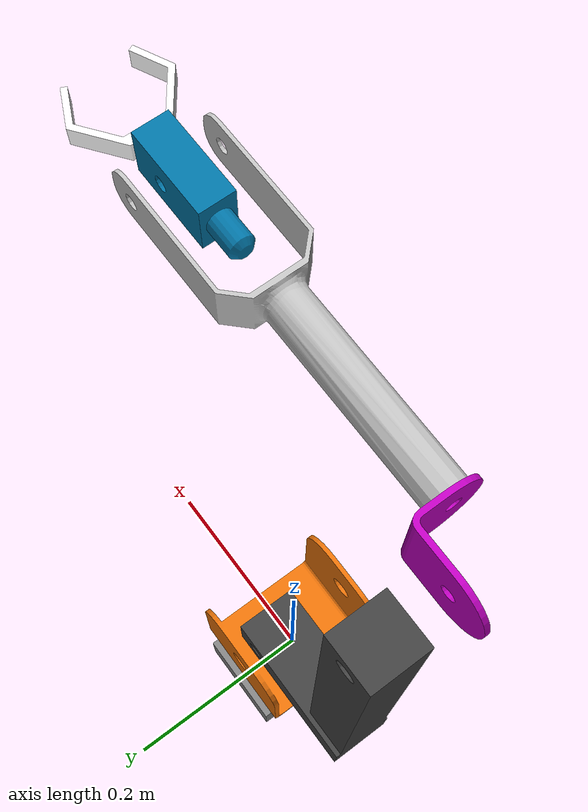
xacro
<?xml version="1.0"?>
<robot xmlns:xacro="http://www.ros.org/wiki/xacro" name="Arm_URDF_2026">
    <xacro:arg name="initial_positions_file" default="initial_positions.yaml" />

    <!-- Import Arm_URDF_2026 urdf file -->
    <xacro:include filename="$(find simulation)/urdfs/Arm_URDF_2026.urdf" />

    <!-- Import control_xacro -->
    <xacro:include filename="Arm_URDF_2026.ros2_control.xacro" />

    <xacro:Arm_URDF_2026_ros2_control name="FakeSystem" initial_positions_file="$(arg initial_positions_file)"/>

</robot>

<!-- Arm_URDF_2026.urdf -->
<robot
  name="Arm_URDF_2026">
  <link
    name="base_link">
    <inertial>
      <origin
        xyz="3.84653360219475E-19 1.62936819250162E-18 -0.0341328821653139"
        rpy="0 0 0" />
      <mass
        value="0.864892134563512" />
      <inertia
        ixx="0.00191876859811616"
        ixy="-3.39237895942118E-19"
        ixz="6.81787506541134E-20"
        iyy="0.00123037859811616"
        iyz="3.87426352662329E-20"
        izz="0.00194695919266471" />
    </inertial>
    <visual>
      <origin
        xyz="0 0 0"
        rpy="0 0 0" />
      <geometry>
        <mesh
          filename="package://simulation/meshes/Arm_URDF_2026/base_link.STL" />
      </geometry>
      <material
        name="">
        <color
          rgba="0.501960784313725 0.501960784313725 0.501960784313725 1" />
      </material>
    </visual>
    <collision>
      <origin
        xyz="0 0 0"
        rpy="0 0 0" />
      <geometry>
        <mesh
          filename="package://simulation/meshes/Arm_URDF_2026/base_link.STL" />
      </geometry>
    </collision>
  </link>
  <link
    name="shoulder_plate">
    <inertial>
      <origin
        xyz="5.08794742628151E-18 -1.92579702269949E-16 0.0600160238534802"
        rpy="0 0 0" />
      <mass
        value="0.218906800388021" />
      <inertia
        ixx="0.00111549148827076"
        ixy="-2.33595804984975E-18"
        ixz="2.49525184688718E-19"
        iyy="0.0006612096112071"
        iyz="-1.11709605937177E-18"
        izz="0.000976648220892923" />
    </inertial>
    <visual>
      <origin
        xyz="0 0 0"
        rpy="0 0 0" />
      <geometry>
        <mesh
          filename="package://simulation/meshes/Arm_URDF_2026/shoulder_plate.STL" />
      </geometry>
      <material
        name="">
        <color
          rgba="0.909803921568627 0.443137254901961 0.0313725490196078 1" />
      </material>
    </visual>
    <collision>
      <origin
        xyz="0 0 0"
        rpy="0 0 0" />
      <geometry>
        <mesh
          filename="package://simulation/meshes/Arm_URDF_2026/shoulder_plate.STL" />
      </geometry>
    </collision>
  </link>
  <joint
    name="shoulder"
    type="revolute">
    <origin
      xyz="0 0 0"
      rpy="0 0 0" />
    <parent
      link="base_link" />
    <child
      link="shoulder_plate" />
    <axis
      xyz="0 0 1" />
    <limit
      lower="-3.1416"
      upper="3.1416"
      effort="0"
      velocity="0" />
  </joint>
  <link
    name="shoulder_tube">
    <inertial>
      <origin
        xyz="0.0934397535393198 0.153473166564317 0.0789999999999963"
        rpy="0 0 0" />
      <mass
        value="1.53763602521836" />
      <inertia
        ixx="0.0311716120782097"
        ixy="-0.00392450317623869"
        ixz="-4.23782427029306E-19"
        iyy="0.0025675148100835"
        iyz="-3.11391018603271E-18"
        izz="0.0329256007856722" />
    </inertial>
    <visual>
      <origin
        xyz="0 0 0"
        rpy="0 0 0" />
      <geometry>
        <mesh
          filename="package://simulation/meshes/Arm_URDF_2026/shoulder_tube.STL" />
      </geometry>
      <material
        name="">
        <color
          rgba="0.250980392156863 0.250980392156863 0.250980392156863 1" />
      </material>
    </visual>
    <collision>
      <origin
        xyz="0 0 0"
        rpy="0 0 0" />
      <geometry>
        <mesh
          filename="package://simulation/meshes/Arm_URDF_2026/shoulder_tube.STL" />
      </geometry>
    </collision>
  </link>
  <joint
    name="shoulder_joint"
    type="revolute">
    <origin
      xyz="0 -0.0625 0.095"
      rpy="1.5708 0 3.1416" />
    <parent
      link="shoulder_plate" />
    <child
      link="shoulder_tube" />
    <axis
      xyz="0 0 -1" />
    <limit
      lower="-3.1416"
      upper="3.1416"
      effort="0"
      velocity="0" />
  </joint>
  <link
    name="elbow_plate">
    <inertial>
      <origin
        xyz="-0.0261022307368617 -1.11022302462516E-16 0.0514469264415673"
        rpy="0 0 0" />
      <mass
        value="0.0520779843414588" />
      <inertia
        ixx="4.41777709651995E-05"
        ixy="2.8882044236066E-21"
        ixz="1.57671201262607E-05"
        iyy="5.61312283203173E-05"
        iyz="2.23628916786052E-23"
        izz="6.26364976063086E-05" />
    </inertial>
    <visual>
      <origin
        xyz="0 0 0"
        rpy="0 0 0" />
      <geometry>
        <mesh
          filename="package://simulation/meshes/Arm_URDF_2026/elbow_plate.STL" />
      </geometry>
      <material
        name="">
        <color
          rgba="0.752941176470588 0 0.752941176470588 1" />
      </material>
    </visual>
    <collision>
      <origin
        xyz="0 0 0"
        rpy="0 0 0" />
      <geometry>
        <mesh
          filename="package://simulation/meshes/Arm_URDF_2026/elbow_plate.STL" />
      </geometry>
    </collision>
  </link>
  <joint
    name="elbow"
    type="revolute">
    <origin
      xyz="0.11007 0.40372 0.0525"
      rpy="-3.1416 0 0" />
    <parent
      link="shoulder_tube" />
    <child
      link="elbow_plate" />
    <axis
      xyz="0 0 -1" />
    <limit
      lower="-3.1416"
      upper="3.1416"
      effort="0"
      velocity="0" />
  </joint>
  <link
    name="wrist">
    <inertial>
      <origin
        xyz="3.58046925441613E-15 3.33066907387547E-16 0.134620995048469"
        rpy="0 0 0" />
      <mass
        value="0.320889143269656" />
      <inertia
        ixx="0.0024419546737531"
        ixy="2.0976783346451E-20"
        ixz="1.16073686945327E-17"
        iyy="0.00252871497722016"
        iyz="-5.27209042104812E-20"
        izz="0.000166391156539952" />
    </inertial>
    <visual>
      <origin
        xyz="0 0 0"
        rpy="0 0 0" />
      <geometry>
        <mesh
          filename="package://simulation/meshes/Arm_URDF_2026/wrist.STL" />
      </geometry>
      <material
        name="">
        <color
          rgba="0.752941176470588 0.752941176470588 0.752941176470588 1" />
      </material>
    </visual>
    <collision>
      <origin
        xyz="0 0 0"
        rpy="0 0 0" />
      <geometry>
        <mesh
          filename="package://simulation/meshes/Arm_URDF_2026/wrist.STL" />
      </geometry>
    </collision>
  </link>
  <joint
    name="elbow_roll"
    type="revolute">
    <origin
      xyz="-0.052 0 0.08"
      rpy="3.1416 1.5708 0" />
    <parent
      link="elbow_plate" />
    <child
      link="wrist" />
    <axis
      xyz="0 0 1" />
    <limit
      lower="-3.1416"
      upper="3.1416"
      effort="0"
      velocity="0" />
  </joint>
  <link
    name="end_effector">
    <inertial>
      <origin
        xyz="-0.0161139391356931 -0.00259180380524526 -4.28823643261467E-15"
        rpy="0 0 0" />
      <mass
        value="0.168430124440615" />
      <inertia
        ixx="4.9380907682992E-05"
        ixy="2.49162208357145E-07"
        ixz="1.24894911363941E-20"
        iyy="0.00018100414119621"
        iyz="-4.57622129740949E-21"
        izz="0.000198242850143219" />
    </inertial>
    <visual>
      <origin
        xyz="0 0 0"
        rpy="0 0 0" />
      <geometry>
        <mesh
          filename="package://simulation/meshes/Arm_URDF_2026/end_effector.STL" />
      </geometry>
      <material
        name="">
        <color
          rgba="0 0.450980392156863 0.643137254901961 1" />
      </material>
    </visual>
    <collision>
      <origin
        xyz="0 0 0"
        rpy="0 0 0" />
      <geometry>
        <mesh
          filename="package://simulation/meshes/Arm_URDF_2026/end_effector.STL" />
      </geometry>
    </collision>
  </link>
  <joint
    name="ee_pitch"
    type="revolute">
    <origin
      xyz="0 0 0.334"
      rpy="3.1416 -1.5708 0" />
    <parent
      link="wrist" />
    <child
      link="end_effector" />
    <axis
      xyz="0 0 -1" />
    <limit
      lower="-3.1416"
      upper="3.1416"
      effort="0"
      velocity="0" />
  </joint>
  <link
    name="gripper">
    <inertial>
      <origin
        xyz="5.06539254985228E-15 2.05391259555654E-15 0.0209653367613958"
        rpy="0 0 0" />
      <mass
        value="0.0277832491665746" />
      <inertia
        ixx="1.66013886897555E-05"
        ixy="-5.40905697064629E-22"
        ixz="-7.75422192159671E-20"
        iyy="4.61873064953396E-05"
        iyz="3.5185893407144E-21"
        izz="3.14806768172064E-05" />
    </inertial>
    <visual>
      <origin
        xyz="0 0 0"
        rpy="0 0 0" />
      <geometry>
        <mesh
          filename="package://simulation/meshes/Arm_URDF_2026/gripper.STL" />
      </geometry>
      <material
        name="">
        <color
          rgba="1 1 1 1" />
      </material>
    </visual>
    <collision>
      <origin
        xyz="0 0 0"
        rpy="0 0 0" />
      <geometry>
        <mesh
          filename="package://simulation/meshes/Arm_URDF_2026/gripper.STL" />
      </geometry>
    </collision>
  </link>
  <joint
    name="ee_roll"
    type="revolute">
    <origin
      xyz="0.045 -0.0025 0"
      rpy="0 1.5708 0" />
    <parent
      link="end_effector" />
    <child
      link="gripper" />
    <axis
      xyz="0 0 -1" />
    <limit
      lower="-3.1416"
      upper="3.1416"
      effort="0"
      velocity="0" />
  </joint>
  <!-- Dummy joint so moveit can config the end effector properly-->
  <link
    name="dummy_ee_link">
    <inertial>
      <origin
        xyz="0 0 0"
        rpy="0 0 0" />
      <mass
        value="0" />
      <inertia
        ixx="0"
        ixy="0"
        ixz="0"
        iyy="0"
        iyz="0"
        izz="0" />
    </inertial>
  </link>
  <joint
    name="dummy_ee_joint"
    type="revolute">
    <origin
      xyz="0 0 0"
      rpy="0 0 0" />
    <parent
      link="gripper" />
    <child
      link="dummy_ee_link" />
    <axis
      xyz="0 0 -1" />
    <limit
      lower="0"
      upper="0"
      effort="0"
      velocity="0" />
  </joint>
</robot>
